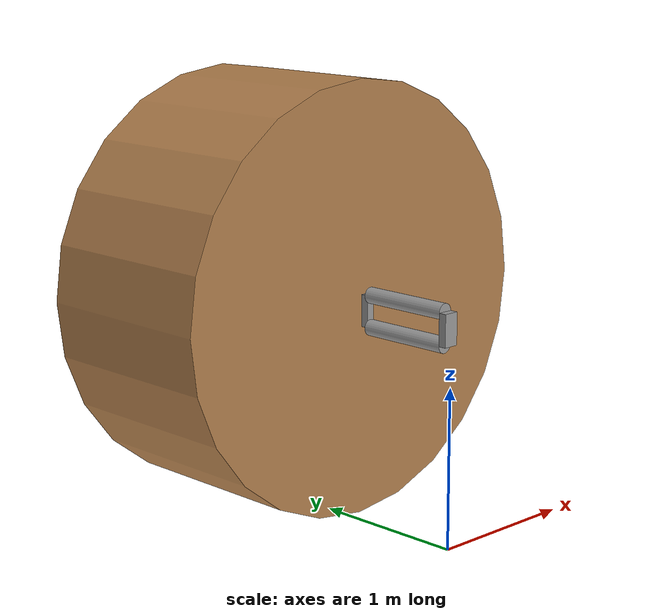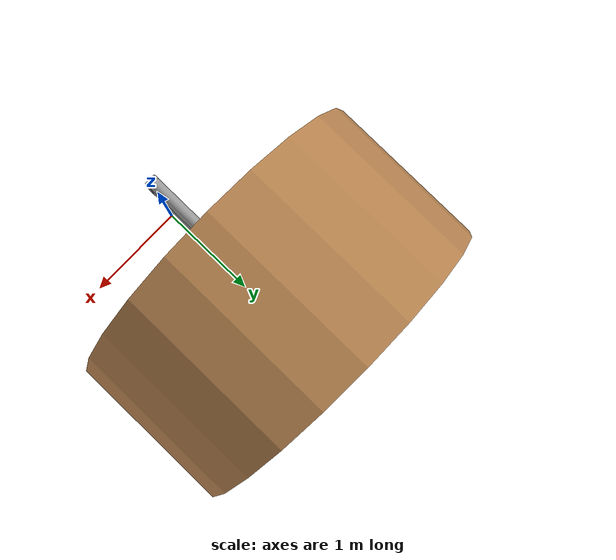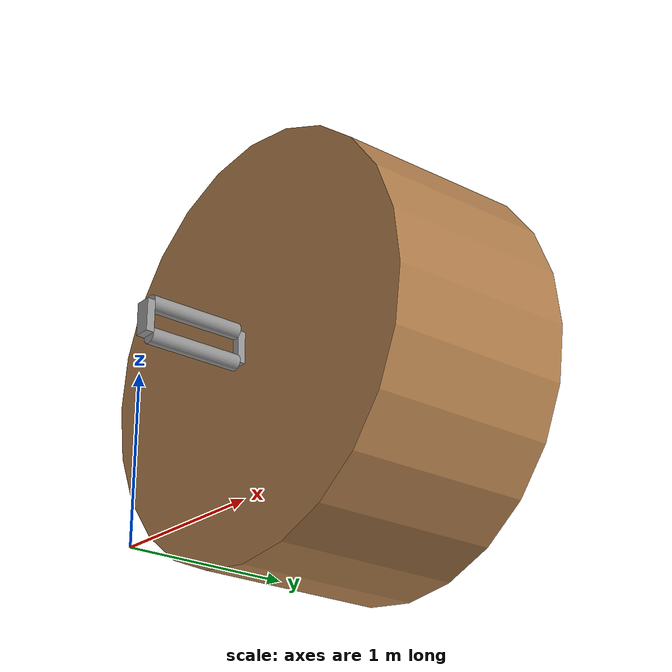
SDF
<?xml version="1.0" ?>

<sdf version="1.5">
  <model name="unsteered_suspension">

<!-- Inner Chassis Mount -->
    <link name="inner_mount">
      <pose>0 0.025 1.35  0 0 0</pose>
      <inertial>
        <pose>0 0.025 1.35  0 0 0</pose>
        <mass>10</mass>
        <inertia>
          <ixx>10</ixx>
          <iyy>10</iyy>
          <izz>10</izz>
          <ixy>0</ixy>
          <ixz>0</ixz>
          <iyz>0</iyz>
        </inertia>
      </inertial>
      <collision name="collision">
        <geometry>
          <box>
            <size>0.1 0.05 0.2</size>
          </box>
        </geometry>
      </collision>
      <visual name="visual">
        <geometry>
          <box>
            <size>0.1 0.05 0.2</size>
          </box>
        </geometry>
        <material>
          <script>
            <uri>file://media/materials/scripts/gazebo.material</uri>
            <name>Gazebo/Grey</name>
          </script>
        </material>
      </visual>
    </link>

<!-- upper arm -->
    <link name="upper_suspension_arm">
      <pose>0 0.35 1.45  -1.5707963267948966 0 0</pose>
      <inertial>
        <mass>20</mass>
        <inertia>
          <ixx>20</ixx>
          <iyy>20</iyy>
          <izz>20</izz>
          <ixy>0</ixy>
          <ixz>0</ixz>
          <iyz>0</iyz>
        </inertia>
      </inertial>
      <collision name="collision">
        <geometry>
          <cylinder>
            <radius>0.05</radius>
            <length>0.6</length>
          </cylinder>
        </geometry>
      </collision>
      <visual name="visual">
        <geometry>
          <cylinder>
            <radius>0.05</radius>
            <length>0.6</length>
          </cylinder>
        </geometry>
        <material>
          <script>
            <uri>file://media/materials/scripts/gazebo.material</uri>
            <name>Gazebo/Grey</name>
          </script>
        </material>
      </visual>
    </link>

    <joint name="inner_moount_to_upper_arm" type="revolute">
      <parent>inner_mount</parent>
      <child>upper_suspension_arm</child>
      <pose>0 0 -0.3 0 0 0</pose>
      <axis>
        <xyz>1 0 0</xyz>
        <limit>
          <upper>0.5</upper>
          <lower>-0.5</lower>
        </limit>
        <dynamics>
          <damping>1</damping>
          <spring_stiffness>100000</spring_stiffness>
          <spring_reference>-0.5</spring_reference>
        </dynamics>
      </axis>
    </joint>

    <joint name="wheel_moount_to_upper_arm" type="revolute">
      <parent>wheel_mount</parent>
      <child>upper_suspension_arm</child>
      <pose>0 0 0.3 0 0 0</pose>
      <axis>
        <xyz>1 0 0</xyz>
      </axis>
    </joint>

<!-- lower arm -->
    <link name="lower_suspension_arm">
      <pose>0 0.35 1.25  -1.5707963267948966 0 0</pose>
      <inertial>
        <mass>20</mass>
        <inertia>
          <ixx>20</ixx>
          <iyy>20</iyy>
          <izz>20</izz>
          <ixy>0</ixy>
          <ixz>0</ixz>
          <iyz>0</iyz>
        </inertia>
      </inertial>
      <collision name="collision">
        <geometry>
          <cylinder>
            <radius>0.05</radius>
            <length>0.6</length>
          </cylinder>
        </geometry>
      </collision>
      <visual name="visual">
        <geometry>
          <cylinder>
            <radius>0.05</radius>
            <length>0.6</length>
          </cylinder>
        </geometry>
        <material>
          <script>
            <uri>file://media/materials/scripts/gazebo.material</uri>
            <name>Gazebo/Grey</name>
          </script>
        </material>
      </visual>
    </link>

    <joint name="inner_moount_to_lower_arm" type="revolute">
      <parent>inner_mount</parent>
      <child>lower_suspension_arm</child>
      <pose>0 0 -0.3 0 0 0</pose>
      <axis>
        <xyz>1 0 0</xyz>
        <limit>
          <upper>0.5</upper>
          <lower>-0.5</lower>
        </limit>
      </axis>
    </joint>

    <joint name="wheel_moount_to_lower_arm" type="revolute">
      <parent>wheel_mount</parent>
      <child>lower_suspension_arm</child>
      <pose>-0 0 0.3 0 0 0</pose>
      <axis>
        <xyz>1 0 0</xyz>
      </axis>
    </joint>

<!-- Wheel Mount -->
    <link name="wheel_mount">
      <pose>0 0.675 1.35  0 0 0</pose>
      <inertial>
        <mass>10</mass>
        <inertia>
          <ixx>10</ixx>
          <iyy>10</iyy>
          <izz>10</izz>
          <ixy>0</ixy>
          <ixz>0</ixz>
          <iyz>0</iyz>
        </inertia>
      </inertial>
      <collision name="collision">
        <geometry>
          <box>
            <size>0.05 0.05 0.2</size>
          </box>
        </geometry>
      </collision>
      <visual name="visual">
        <geometry>
          <box>
            <size>0.05 0.05 0.2</size>
          </box>
        </geometry>
        <material>
          <script>
            <uri>file://media/materials/scripts/gazebo.material</uri>
            <name>Gazebo/Grey</name>
          </script>
        </material>
      </visual>
    </link>

<!-- Wheel -->
    <link name="wheel_unsteered">
      <pose>0 1.3575 1.4  -1.5707963267948966 0 0</pose>
      <inertial>
        <mass>2000</mass>
        <inertia>
          <ixx>100</ixx>
          <iyy>100</iyy>
          <izz>100</izz>
          <ixy>0</ixy>
          <ixz>0</ixz>
          <iyz>0</iyz>
        </inertia>
      </inertial>
      <collision name="collision">
        <geometry>
          <cylinder>
            <radius>1.35</radius>
            <length>1.25</length>
          </cylinder>
        </geometry>
      </collision>
      <visual name="visual">
        <geometry>
          <cylinder>
            <radius>1.35</radius>
            <length>1.25</length>
          </cylinder>
        </geometry>
        <material>
          <script>
            <uri>file://media/materials/scripts/gazebo.material</uri>
            <name>Gazebo/Wood</name>
          </script>
        </material>
      </visual>
    </link>

    <joint type="revolute" name="unsteered_wheel_joint">
      <parent>wheel_mount</parent>
      <child>wheel_unsteered</child>
      <axis>
        <xyz>0 0 1</xyz>
      </axis>
    </joint>

  </model>
</sdf>
